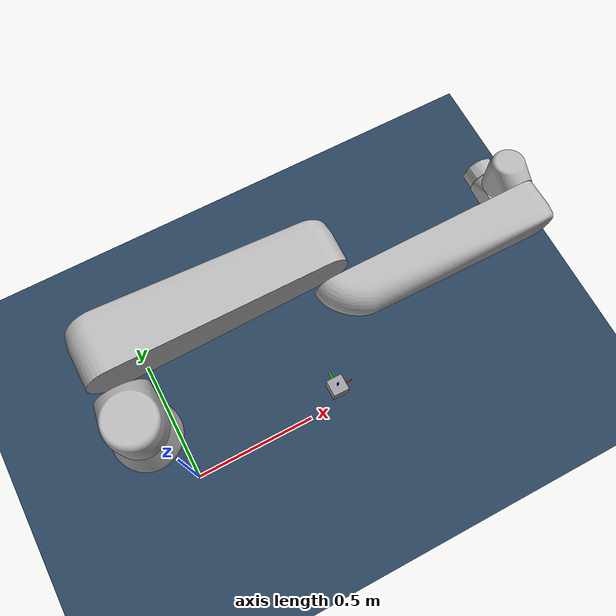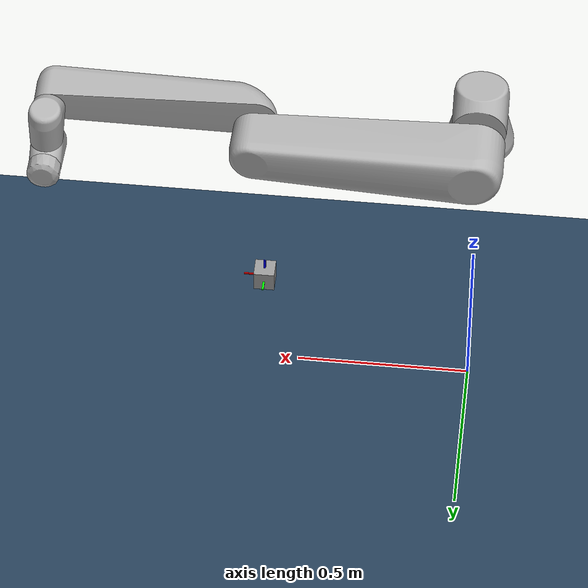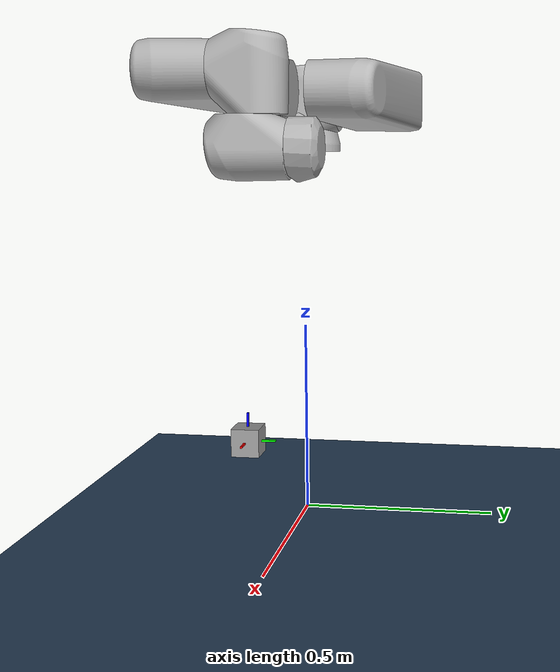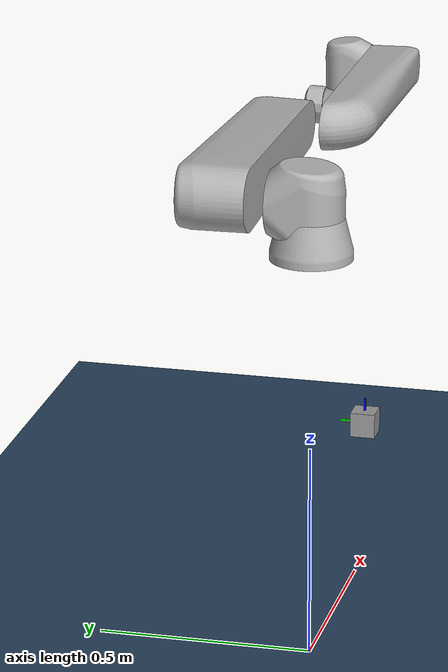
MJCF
<mujoco model="ur10_reorientation_scene">
  <include file="../ur10/ur10.xml"/>

  <statistic center="0.4 0 0.4" extent="1"/>

  <visual>
    <headlight diffuse="0.6 0.6 0.6" ambient="0.1 0.1 0.1" specular="0 0 0"/>
    <rgba haze="0.15 0.25 0.35 1"/>
    <global azimuth="120" elevation="-20"/>
  </visual>

  <asset>
    <texture type="skybox" builtin="gradient" rgb1="0.3 0.5 0.7" rgb2="0 0 0" width="512" height="3072"/>
    <texture type="2d" name="groundplane" builtin="checker" mark="edge" rgb1="0.2 0.3 0.4" rgb2="0.1 0.2 0.3"
             markrgb="0.8 0.8 0.8" width="300" height="300"/>
    <material name="groundplane" texture="groundplane" texuniform="true" texrepeat="5 5" reflectance="0.2"/>

    <texture name="graycube" type="cube"
             fileup="./textures/grayup.png"
             fileback="./textures/grayback.png"
             filedown="./textures/graydown.png"
             filefront="./textures/grayfront.png"
             fileleft="./textures/grayleft.png"
             fileright="./textures/grayright.png"/>
    <material name="graycube" texture="graycube"/>
    <material name="red" rgba="1 0 0 1"/>
    <material name="green" rgba="0 1 0 1"/>
    <material name="blue" rgba="0 0 1 1"/>
  </asset>

  <worldbody>
    <light pos="0 0 1.5" dir="0 0 -1" directional="true"/>
    <geom name="floor" size="0 0 0.05" type="plane" material="groundplane"/>

    <body name="ee_target" mocap="true" pos="0.6 0.0 0.35" quat="1 0 0 0">
      <geom name="target_cube" type="box" size="0.03 0.03 0.03" material="graycube" contype="0" conaffinity="0"/>
      <geom name="target_axis_x" type="box" size="0.03 0.002 0.002" pos="0.03 0 0" material="red" contype="0" conaffinity="0"/>
      <geom name="target_axis_y" type="box" size="0.003 0.03 0.002" pos="0 0.03 0" material="green" contype="0" conaffinity="0"/>
      <geom name="target_axis_z" type="box" size="0.003 0.002 0.03" pos="0 0 0.03" material="blue" contype="0" conaffinity="0"/>
    </body>
  </worldbody>
</mujoco>

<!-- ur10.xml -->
<mujoco model="ur10">
  <compiler angle="radian" autolimits="true"/>
  <option integrator="implicitfast" gravity="0 0 -9.81"/>

  <default>
    <default class="ur10">
      <joint axis="0 1 0" range="-6.28319 6.28319" armature="0.1"/>
      <position ctrlrange="-6.2831 6.2831"/>
      <general biastype="affine" ctrlrange="-6.2831 6.2831" gainprm="5000" biasprm="0 -5000 -500"/>
    </default>
  </default>

  <asset>
    <mesh name="base" file="./assets/base.stl"/>
    <mesh name="shoulder" file="./assets/shoulder.stl"/>
    <mesh name="upperarm" file="./assets/upperarm.stl"/>
    <mesh name="forearm" file="./assets/forearm.stl"/>
    <mesh name="wrist1" file="./assets/wrist1.stl"/>
    <mesh name="wrist2" file="./assets/wrist2.stl"/>
    <mesh name="wrist3" file="./assets/wrist3.stl"/>
  </asset>

  <worldbody>
    <body name="link0" childclass="ur10" pos="0 0 0.96">
      <geom quat="-1 0 0 0" type="mesh" rgba="0.7 0.7 0.7 1" mesh="base"/>
      <body name="shoulder_link" pos="0 0 0.1273" quat="0 0 0 1">
        <inertial pos="0.021 -0.027 0" quat="0.988634 -0.000680926 0.148578 -0.0229591" mass="7.1" diaginertia="0.0353866 0.0352903 0.0202532"/>
        <joint name="joint1" pos="0 0 0" axis="0 0 1" range="-6.28319 6.28319" damping="10"/>
        <geom quat="0 0 0 1" type="mesh" rgba="0.7 0.7 0.7 1" mesh="shoulder"/>
        <body name="upper_arm_link" quat="0.707107 0.707107 0 0">
          <inertial pos="-0.232 0 0.158" quat="0.500033 0.499784 0.489585 0.510381" mass="12.7" diaginertia="0.77068 0.769758 0.0278114"/>
          <joint name="joint2" pos="0 0 0" axis="0 0 1" range="-6.28319 6.28319" damping="10"/>
          <geom pos="0 0 0.220941" quat="0.5 0.5 -0.5 -0.5" type="mesh" rgba="0.7 0.7 0.7 1" mesh="upperarm"/>
          <body name="forearm_link" pos="-0.612 0 0">
            <inertial pos="-0.3323 0 0.068" quat="0.492051 0.507971 0.507346 0.492394" mass="4.27" diaginertia="0.30928 0.306743 0.00985709"/>
            <joint name="joint3" pos="0 0 0" axis="0 0 1" range="-3.14159 3.14159" damping="5"/>
            <geom pos="0 0 0.049042" quat="0.5 0.5 -0.5 -0.5" type="mesh" rgba="0.7 0.7 0.7 1" mesh="forearm"/>
            <body name="wrist_1_link" pos="-0.5723 0 0.163941">
              <inertial pos="0 -0.018 0.007" quat="0.525776 0.850564 -0.0100431 9.45801e-05" mass="2" diaginertia="0.00296017 0.00269992 0.00209991"/>
              <joint name="joint4" pos="0 0 0" axis="0 0 1" range="-6.28319 6.28319" damping="2"/>
              <geom pos="0 0 -0.1149" quat="0.707107 0.707107 0 0" type="mesh" rgba="0.7 0.7 0.7 1" mesh="wrist1"/>
              <body name="wrist_2_link" pos="0 -0.1157 -2.37305e-11" quat="0.707107 0.707107 0 0">
                <inertial pos="0 0.018 -0.007" quat="0.525776 0.850564 -0.0100431 9.45801e-05" mass="2" diaginertia="0.00296017 0.00269992 0.00209991"/>
                <joint name="joint5" pos="0 0 0" axis="0 0 1" range="-6.28319 6.28319" damping="2"/>
                <geom pos="0 0 -0.1158" quat="1 0 0 0" type="mesh" rgba="0.7 0.7 0.7 1" mesh="wrist2"/>
                <body name="wrist_3_link" pos="0 0.0922 -1.89105e-11" quat="0.707107 -0.707107 0 0">
                  <inertial pos="0 0 -0.026" quat="0.707107 0 0 0.707107" mass="0.365" diaginertia="0.00041 0.0004 0.00034"/>
                  <joint name="joint6" pos="0 0 0" axis="0 0 1" range="-6.28319 6.28319" damping="2"/>
                  <geom pos="0 0 -0.0922" quat="0.707107 0.707107 0 0" type="mesh" rgba="0.7 0.7 0.7 1" mesh="wrist3"/>
                  <body name="attachment" pos="0 0 0.01" quat="0.707107 0 0 -0.707107"></body>
                </body>
              </body>
            </body>
          </body>
        </body>
      </body>
    </body>
  </worldbody>

  <actuator>
    <general class="ur10" name="actuator1" joint="joint1" gainprm="4500" biasprm="0 -4500 -450" forcerange="-330 330"/>
    <general class="ur10" name="actuator2" joint="joint2" gainprm="4500" biasprm="0 -4500 -450" forcerange="-330 330"/>
    <general class="ur10" name="actuator3" joint="joint3" gainprm="3500" biasprm="0 -3500 -350" forcerange="-150 150" ctrlrange="-3.1415 3.1415"/>
    <general class="ur10" name="actuator4" joint="joint4" gainprm="3500" biasprm="0 -3500 -350" forcerange="-56 56"/>
    <general class="ur10" name="actuator5" joint="joint5" gainprm="2000" biasprm="0 -2000 -200" forcerange="-56 56"/>
    <general class="ur10" name="actuator6" joint="joint6" gainprm="2000" biasprm="0 -2000 -200" forcerange="-56 56"/>
  </actuator>

  <keyframe>
    <key name="home" qpos="0.0 -1.5708 0.0 -1.5708 0.0 0.0" ctrl="0.0 -1.5708 0.0 -1.5708 0.0 0.0"/>
  </keyframe>

</mujoco>
